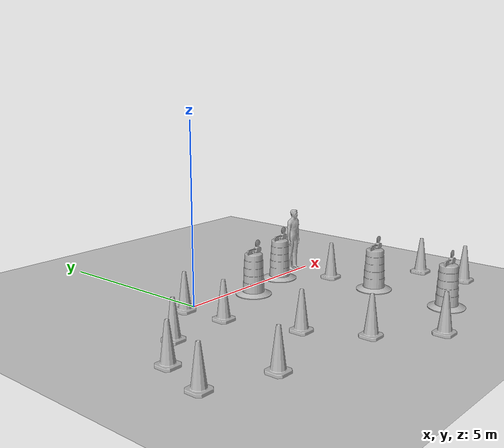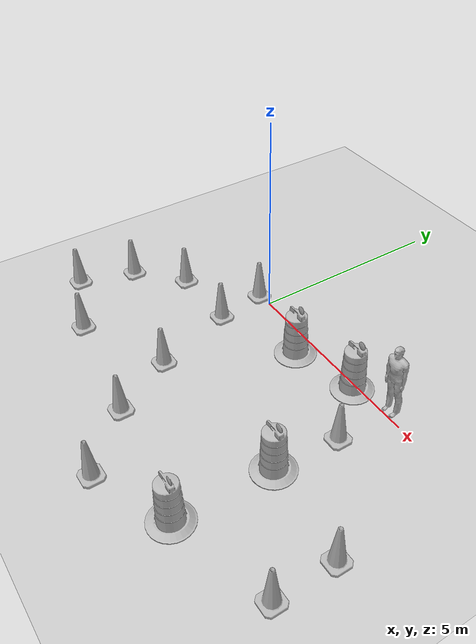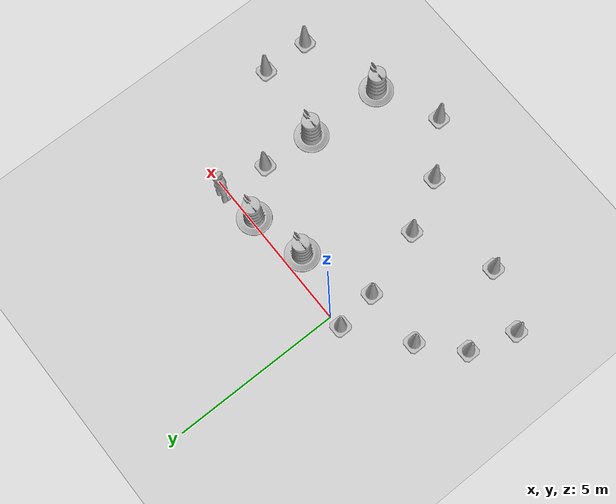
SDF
<sdf version="1.7">
 <world name="default">
  <light name="sun" type="directional">
   <pose>0 0 10 0 -0 0</pose>
   <diffuse>0.8 0.8 0.8 1</diffuse>
   <specular>0.2 0.2 0.2 1</specular>
   <attenuation>
    <range>1000</range>
    <constant>0.9</constant>
    <linear>0.01</linear>
    <quadratic>0.001</quadratic>
   </attenuation>
   <direction>-0.5 0.1 -0.9</direction>
   <spot><inner_angle>0</inner_angle><outer_angle>0</outer_angle><falloff>0</falloff></spot>
  </light>
  <model name="ground_plane">
   <static>1</static>
   <link name="link">
    <collision name="collision">
     <geometry><plane><normal>0 0 1</normal><size>100 100</size></plane></geometry>
     <surface>
      <contact><collide_bitmask>65535</collide_bitmask></contact>
      <friction><ode><mu>100</mu><mu2>50</mu2></ode></friction>
     </surface>
    </collision>
    <visual name="visual">
     <cast_shadows>0</cast_shadows>
     <geometry><plane><normal>0 0 1</normal><size>100 100</size></plane></geometry>
     <material>
      <script><uri>file://media/materials/scripts/gazebo.material</uri><name>Gazebo/Grey</name></script>
     </material>
    </visual>
   </link>
  </model>
  <gravity>0 0 -9.8</gravity>
  <magnetic_field>6e-06 2.3e-05 -4.2e-05</magnetic_field>
  <atmosphere type="adiabatic"/>
  <physics type="ode">
   <max_step_size>0.001</max_step_size>
   <real_time_factor>1</real_time_factor>
   <real_time_update_rate>1000</real_time_update_rate>
  </physics>
  <scene><ambient>0.4 0.4 0.4 1</ambient><background>0.7 0.7 0.7 1</background><shadows>1</shadows></scene>
  <audio><device>default</device></audio>
  <spherical_coordinates>
   <surface_model>EARTH_WGS84</surface_model>
   <latitude_deg>0</latitude_deg>
   <longitude_deg>0</longitude_deg>
   <elevation>0</elevation>
   <heading_deg>0</heading_deg>
  </spherical_coordinates>
  <model name="person_standing">
   <link name="link">
    <inertial>
     <pose>0 -0.1 0.95 0 -0 0</pose>
     <mass>80</mass>
     <inertia><ixx>24.88</ixx><ixy>0</ixy><ixz>0</ixz><iyy>25.73</iyy><iyz>0</iyz><izz>2.48</izz></inertia>
    </inertial>
    <collision name="bottom">
     <pose>0 -0.1 0.01 0 -0 0</pose>
     <geometry><box><size>0.5 0.35 0.02</size></box></geometry>
    </collision>
    <collision name="person">
     <pose>0 0 0.02 0.04 -0 0</pose>
     <geometry><mesh><uri>model://person_standing/meshes/standing.dae</uri></mesh></geometry>
    </collision>
    <visual name="visual">
     <pose>0 0 0.02 0.04 -0 0</pose>
     <geometry><mesh><uri>model://person_standing/meshes/standing.dae</uri></mesh></geometry>
    </visual>
   </link>
   <pose>4.54072 0.244468 0 -0 1e-06 -0.000334</pose>
  </model>
  <model name="Construction Cone">
   <link name="link">
    <collision name="collision">
     <geometry>
      <mesh><scale>10 10 10</scale><uri>model://construction_cone/meshes/construction_cone.dae</uri></mesh>
     </geometry>
    </collision>
    <visual name="visual">
     <geometry>
      <mesh><scale>10 10 10</scale><uri>model://construction_cone/meshes/construction_cone.dae</uri></mesh>
     </geometry>
    </visual>
    <inertial>
     <inertia><ixx>1</ixx><ixy>0</ixy><ixz>0</ixz><iyy>1</iyy><iyz>0</iyz><izz>1</izz></inertia>
     <mass>1</mass>
    </inertial>
   </link>
   <pose>4.5453 -1.29672 0 -0 -0 -0</pose>
  </model>
  <model name="Construction Barrel">
   <link name="link">
    <inertial>
     <pose>0 0 0.4 0 -0 0</pose>
     <mass>500</mass>
     <inertia><ixx>51.2096</ixx><iyy>51.2096</iyy><izz>25</izz><ixy>0</ixy><ixz>0</ixz><iyz>0</iyz></inertia>
    </inertial>
    <collision name="collision">
     <geometry><mesh><uri>model://construction_barrel/meshes/construction_barrel.dae</uri></mesh></geometry>
    </collision>
    <visual name="visual">
     <geometry><mesh><uri>model://construction_barrel/meshes/construction_barrel.dae</uri></mesh></geometry>
    </visual>
   </link>
   <pose>4.44512 -2.87654 -1e-06 1e-06 -9e-06 -3e-05</pose>
  </model>
  <model name="Construction Cone_0">
   <link name="link">
    <collision name="collision">
     <geometry>
      <mesh><scale>10 10 10</scale><uri>model://construction_cone/meshes/construction_cone.dae</uri></mesh>
     </geometry>
    </collision>
    <visual name="visual">
     <geometry>
      <mesh><scale>10 10 10</scale><uri>model://construction_cone/meshes/construction_cone.dae</uri></mesh>
     </geometry>
    </visual>
    <inertial>
     <inertia><ixx>1</ixx><ixy>0</ixy><ixz>0</ixz><iyy>1</iyy><iyz>0</iyz><izz>1</izz></inertia>
     <mass>1</mass>
    </inertial>
   </link>
   <pose>-0.380744 -0.055063 -0 0 -0 0</pose>
  </model>
  <model name="Construction Cone_1">
   <link name="link">
    <collision name="collision">
     <geometry>
      <mesh><scale>10 10 10</scale><uri>model://construction_cone/meshes/construction_cone.dae</uri></mesh>
     </geometry>
    </collision>
    <visual name="visual">
     <geometry>
      <mesh><scale>10 10 10</scale><uri>model://construction_cone/meshes/construction_cone.dae</uri></mesh>
     </geometry>
    </visual>
    <inertial>
     <inertia><ixx>1</ixx><ixy>0</ixy><ixz>0</ixz><iyy>1</iyy><iyz>0</iyz><izz>1</izz></inertia>
     <mass>1</mass>
    </inertial>
   </link>
   <pose>-0.205695 -1.29296 -0 0 -0 0</pose>
  </model>
  <model name="Construction Cone_2">
   <link name="link">
    <collision name="collision">
     <geometry>
      <mesh><scale>10 10 10</scale><uri>model://construction_cone/meshes/construction_cone.dae</uri></mesh>
     </geometry>
    </collision>
    <visual name="visual">
     <geometry>
      <mesh><scale>10 10 10</scale><uri>model://construction_cone/meshes/construction_cone.dae</uri></mesh>
     </geometry>
    </visual>
    <inertial>
     <inertia><ixx>1</ixx><ixy>0</ixy><ixz>0</ixz><iyy>1</iyy><iyz>0</iyz><izz>1</izz></inertia>
     <mass>1</mass>
    </inertial>
   </link>
   <pose>0.456907 -3.27797 -0 0 -0 0</pose>
  </model>
  <model name="Construction Cone_3">
   <link name="link">
    <collision name="collision">
     <geometry>
      <mesh><scale>10 10 10</scale><uri>model://construction_cone/meshes/construction_cone.dae</uri></mesh>
     </geometry>
    </collision>
    <visual name="visual">
     <geometry>
      <mesh><scale>10 10 10</scale><uri>model://construction_cone/meshes/construction_cone.dae</uri></mesh>
     </geometry>
    </visual>
    <inertial>
     <inertia><ixx>1</ixx><ixy>0</ixy><ixz>0</ixz><iyy>1</iyy><iyz>0</iyz><izz>1</izz></inertia>
     <mass>1</mass>
    </inertial>
   </link>
   <pose>1.26482 -4.76582 -1e-06 2e-06 2e-06 0</pose>
  </model>
  <model name="Construction Cone_4">
   <link name="link">
    <collision name="collision">
     <geometry>
      <mesh><scale>10 10 10</scale><uri>model://construction_cone/meshes/construction_cone.dae</uri></mesh>
     </geometry>
    </collision>
    <visual name="visual">
     <geometry>
      <mesh><scale>10 10 10</scale><uri>model://construction_cone/meshes/construction_cone.dae</uri></mesh>
     </geometry>
    </visual>
    <inertial>
     <inertia><ixx>1</ixx><ixy>0</ixy><ixz>0</ixz><iyy>1</iyy><iyz>0</iyz><izz>1</izz></inertia>
     <mass>1</mass>
    </inertial>
   </link>
   <pose>2.56441 -6.03796 0 -0 -0 -0</pose>
  </model>
  <model name="Construction Barrel_0">
   <link name="link">
    <inertial>
     <pose>0 0 0.4 0 -0 0</pose>
     <mass>500</mass>
     <inertia><ixx>51.2096</ixx><iyy>51.2096</iyy><izz>25</izz><ixy>0</ixy><ixz>0</ixz><iyz>0</iyz></inertia>
    </inertial>
    <collision name="collision">
     <geometry><mesh><uri>model://construction_barrel/meshes/construction_barrel.dae</uri></mesh></geometry>
    </collision>
    <visual name="visual">
     <geometry><mesh><uri>model://construction_barrel/meshes/construction_barrel.dae</uri></mesh></geometry>
    </visual>
   </link>
   <pose>1.87157 -0.510562 -1e-06 3e-06 7e-06 -1.5e-05</pose>
  </model>
  <model name="Construction Barrel_1">
   <link name="link">
    <inertial>
     <pose>0 0 0.4 0 -0 0</pose>
     <mass>500</mass>
     <inertia><ixx>51.2096</ixx><iyy>51.2096</iyy><izz>25</izz><ixy>0</ixy><ixz>0</ixz><iyz>0</iyz></inertia>
    </inertial>
    <collision name="collision">
     <geometry><mesh><uri>model://construction_barrel/meshes/construction_barrel.dae</uri></mesh></geometry>
    </collision>
    <visual name="visual">
     <geometry><mesh><uri>model://construction_barrel/meshes/construction_barrel.dae</uri></mesh></geometry>
    </visual>
   </link>
   <pose>4.37221 -5.19441 0 0 0 -1.5e-05</pose>
  </model>
  <model name="Construction Cone_5">
   <link name="link">
    <collision name="collision">
     <geometry>
      <mesh><scale>10 10 10</scale><uri>model://construction_cone/meshes/construction_cone.dae</uri></mesh>
     </geometry>
    </collision>
    <visual name="visual">
     <geometry>
      <mesh><scale>10 10 10</scale><uri>model://construction_cone/meshes/construction_cone.dae</uri></mesh>
     </geometry>
    </visual>
    <inertial>
     <inertia><ixx>1</ixx><ixy>0</ixy><ixz>0</ixz><iyy>1</iyy><iyz>0</iyz><izz>1</izz></inertia>
     <mass>1</mass>
    </inertial>
   </link>
   <pose>6.81988 -3.09302 -0 0 -1e-06 0</pose>
  </model>
  <model name="Construction Cone_6">
   <link name="link">
    <collision name="collision">
     <geometry>
      <mesh><scale>10 10 10</scale><uri>model://construction_cone/meshes/construction_cone.dae</uri></mesh>
     </geometry>
    </collision>
    <visual name="visual">
     <geometry>
      <mesh><scale>10 10 10</scale><uri>model://construction_cone/meshes/construction_cone.dae</uri></mesh>
     </geometry>
    </visual>
    <inertial>
     <inertia><ixx>1</ixx><ixy>0</ixy><ixz>0</ixz><iyy>1</iyy><iyz>0</iyz><izz>1</izz></inertia>
     <mass>1</mass>
    </inertial>
   </link>
   <pose>6.81719 -4.52079 -0 0 -0 0</pose>
  </model>
  <model name="Construction Cone_7">
   <link name="link">
    <collision name="collision">
     <geometry>
      <mesh><scale>10 10 10</scale><uri>model://construction_cone/meshes/construction_cone.dae</uri></mesh>
     </geometry>
    </collision>
    <visual name="visual">
     <geometry>
      <mesh><scale>10 10 10</scale><uri>model://construction_cone/meshes/construction_cone.dae</uri></mesh>
     </geometry>
    </visual>
    <inertial>
     <inertia><ixx>1</ixx><ixy>0</ixy><ixz>0</ixz><iyy>1</iyy><iyz>0</iyz><izz>1</izz></inertia>
     <mass>1</mass>
    </inertial>
   </link>
   <pose>-1.97557 -1.32396 -0 0 -0 0</pose>
  </model>
  <model name="Construction Cone_8">
   <link name="link">
    <collision name="collision">
     <geometry>
      <mesh><scale>10 10 10</scale><uri>model://construction_cone/meshes/construction_cone.dae</uri></mesh>
     </geometry>
    </collision>
    <visual name="visual">
     <geometry>
      <mesh><scale>10 10 10</scale><uri>model://construction_cone/meshes/construction_cone.dae</uri></mesh>
     </geometry>
    </visual>
    <inertial>
     <inertia><ixx>1</ixx><ixy>0</ixy><ixz>0</ixz><iyy>1</iyy><iyz>0</iyz><izz>1</izz></inertia>
     <mass>1</mass>
    </inertial>
   </link>
   <pose>-3.0656 -2.31198 -0 0 -1e-06 0</pose>
  </model>
  <model name="Construction Cone_9">
   <link name="link">
    <collision name="collision">
     <geometry>
      <mesh><scale>10 10 10</scale><uri>model://construction_cone/meshes/construction_cone.dae</uri></mesh>
     </geometry>
    </collision>
    <visual name="visual">
     <geometry>
      <mesh><scale>10 10 10</scale><uri>model://construction_cone/meshes/construction_cone.dae</uri></mesh>
     </geometry>
    </visual>
    <inertial>
     <inertia><ixx>1</ixx><ixy>0</ixy><ixz>0</ixz><iyy>1</iyy><iyz>0</iyz><izz>1</izz></inertia>
     <mass>1</mass>
    </inertial>
   </link>
   <pose>-3.48144 -3.68058 -2e-06 -3e-06 -1e-06 -0</pose>
  </model>
  <model name="Construction Cone_10">
   <link name="link">
    <collision name="collision">
     <geometry>
      <mesh><scale>10 10 10</scale><uri>model://construction_cone/meshes/construction_cone.dae</uri></mesh>
     </geometry>
    </collision>
    <visual name="visual">
     <geometry>
      <mesh><scale>10 10 10</scale><uri>model://construction_cone/meshes/construction_cone.dae</uri></mesh>
     </geometry>
    </visual>
    <inertial>
     <inertia><ixx>1</ixx><ixy>0</ixy><ixz>0</ixz><iyy>1</iyy><iyz>0</iyz><izz>1</izz></inertia>
     <mass>1</mass>
    </inertial>
   </link>
   <pose>-1.75932 -4.34626 -0 0 -0 0</pose>
  </model>
  <model name="Construction Barrel_2">
   <link name="link">
    <inertial>
     <pose>0 0 0.4 0 -0 0</pose>
     <mass>500</mass>
     <inertia><ixx>51.2096</ixx><iyy>51.2096</iyy><izz>25</izz><ixy>0</ixy><ixz>0</ixz><iyz>0</iyz></inertia>
    </inertial>
    <collision name="collision">
     <geometry><mesh><uri>model://construction_barrel/meshes/construction_barrel.dae</uri></mesh></geometry>
    </collision>
    <visual name="visual">
     <geometry><mesh><uri>model://construction_barrel/meshes/construction_barrel.dae</uri></mesh></geometry>
    </visual>
   </link>
   <pose>3.53284 -0.114774 -1e-06 3e-06 -2e-06 -2e-06</pose>
  </model>
 </world>
</sdf>
